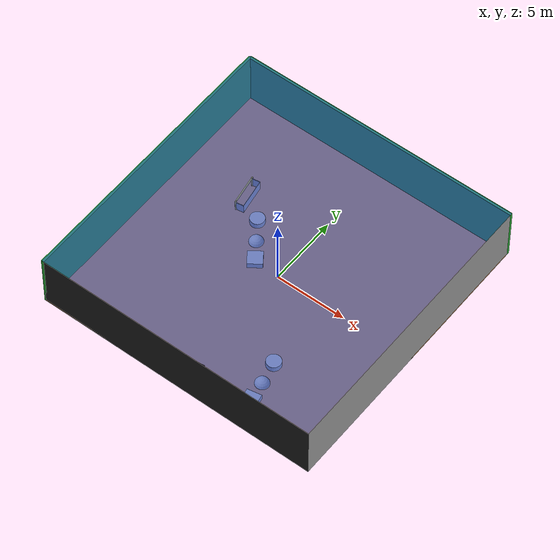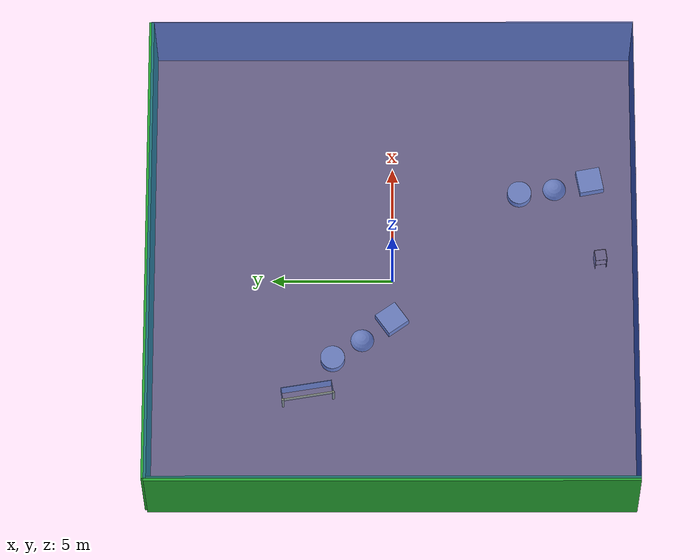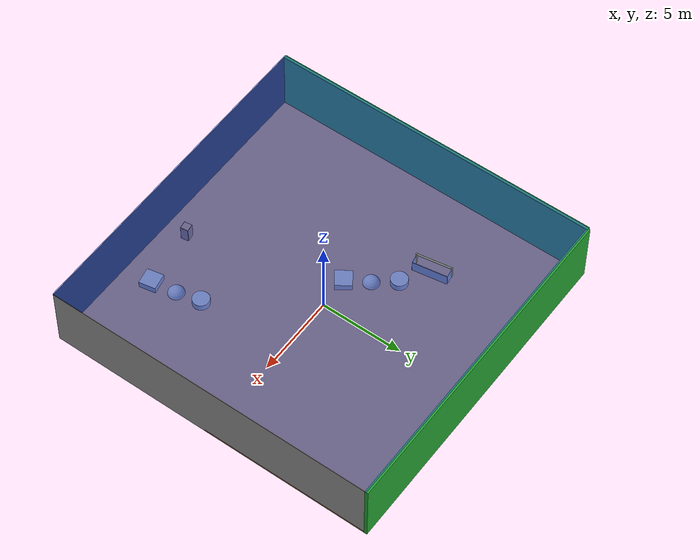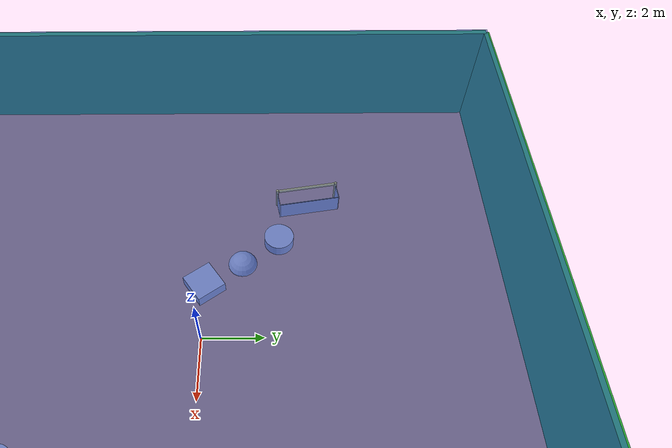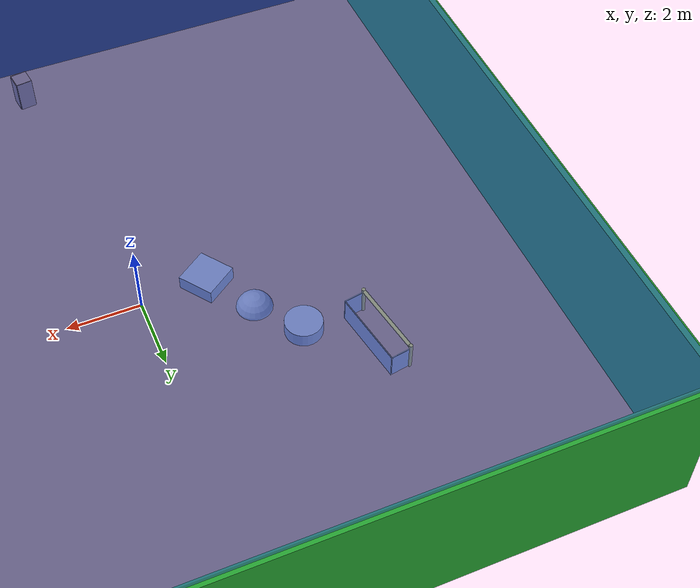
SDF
<sdf version="1.4">
 <world name="default">
  <physics type="ode">
   <max_step_size>0.001</max_step_size>
   <real_time_factor>1</real_time_factor>
   <real_time_update_rate>1000</real_time_update_rate>
   <gravity>0 0 -9.8</gravity>
  </physics>
  <scene><ambient>0.4 0.4 0.4 1</ambient><background>0.7 0.7 0.7 1</background><shadows>1</shadows></scene>
  <model name="Surrounding">
   <static>1</static>
   <link name="Ceiling">
    <collision name="Ceiling_Collision"><geometry><box><size>20 20 0.1</size></box></geometry></collision>
    <visual name="Ceiling_Visual">
     <geometry><box><size>20 20 0.1</size></box></geometry>
     <material>
      <script><uri>file://media/materials/scripts/gazebo.material</uri><name>Gazebo/BlueTransparent</name></script>
     </material>
    </visual>
    <pose>0 0 4.05 0 0 0</pose>
   </link>
   <link name="Wall_South">
    <collision name="Wall_South_Collision">
     <geometry><box><size>20 0 4</size></box></geometry>
     <pose>0 0 2 0 -0 0</pose>
    </collision>
    <visual name="Wall_South_Visual">
     <pose>0 0 2 0 -0 0</pose>
     <geometry><box><size>20 0 4</size></box></geometry>
     <material>
      <script><uri>file://media/materials/scripts/gazebo.material</uri><name>Gazebo/FlatBlack</name></script>
     </material>
    </visual>
    <velocity_decay><linear>0</linear><angular>0</angular></velocity_decay>
    <pose>0 -10 0 0 -0 0</pose>
   </link>
   <link name="Wall_East">
    <collision name="Wall_21_Collision">
     <geometry><box><size>20 0 4</size></box></geometry>
     <pose>0 0 2 0 -0 0</pose>
    </collision>
    <visual name="Wall_21_Visual">
     <pose>0 0 2 0 -0 0</pose>
     <geometry><box><size>20 0 4</size></box></geometry>
     <material>
      <script><uri>file://media/materials/scripts/gazebo.material</uri><name>Gazebo/Grey</name></script>
     </material>
    </visual>
    <velocity_decay><linear>0</linear><angular>0</angular></velocity_decay>
    <pose>10 0 0 0 -0 1.5708</pose>
   </link>
   <link name="Wall_North">
    <collision name="Wall_22_Collision">
     <geometry><box><size>20 0.2 4</size></box></geometry>
     <pose>0 0 2 0 -0 0</pose>
    </collision>
    <visual name="Wall_22_Visual">
     <pose>0 0 2 0 -0 0</pose>
     <geometry><box><size>20 0.2 4</size></box></geometry>
     <material>
      <script><uri>file://media/materials/scripts/gazebo.material</uri><name>Gazebo/GreenGlow</name></script>
     </material>
    </visual>
    <velocity_decay><linear>0</linear><angular>0</angular></velocity_decay>
    <pose>0 10 0 0 -0 0</pose>
   </link>
   <link name="Wall_West">
    <collision name="Wall_23_Collision">
     <geometry><box><size>20 0.2 4</size></box></geometry>
     <pose>0 0 2 0 -0 0</pose>
    </collision>
    <visual name="Wall_23_Visual">
     <pose>0 0 2 0 -0 0</pose>
     <geometry><box><size>20 0.2 4</size></box></geometry>
     <material>
      <script><uri>file://media/materials/scripts/gazebo.material</uri><name>Gazebo/Green</name></script>
     </material>
    </visual>
    <velocity_decay><linear>0</linear><angular>0</angular></velocity_decay>
    <pose>-10 0 0 0 0 -1.5708</pose>
   </link>
   <link name="Ground_link">
    <collision name="collision">
     <pose>0 0 .05 0 -0 0</pose>
     <geometry><box><size>20 20 0.1</size></box></geometry>
    </collision>
    <visual name="visual">
     <pose>0 0 .05 0 -0 0</pose>
     <geometry><box><size>20 20 0.1</size></box></geometry>
     <material>
      <script><uri>file://media/materials/scripts/gazebo.material</uri><name>Gazebo/WoodFloor</name></script>
     </material>
    </visual>
   </link>
   <static>1</static>
  </model>
  <spherical_coordinates>
   <surface_model>EARTH_WGS84</surface_model>
   <latitude_deg>0</latitude_deg>
   <longitude_deg>0</longitude_deg>
   <elevation>0</elevation>
   <heading_deg>0</heading_deg>
  </spherical_coordinates>
  <light name="lightball_0" type="diffuse">
   <diffuse>0.8 0.8 0.8 1</diffuse>
   <specular>0.2 0.2 0.2 1</specular>
   <attenuation>
    <range>100</range>
    <constant>0.7</constant>
    <linear>0.01</linear>
    <quadratic>0.001</quadratic>
   </attenuation>
   <direction>-0.5 0.1 -0.9</direction>
   <pose>-1.09374626554 3.08859727614 1.27752619091 0 0 0</pose>
  </light>
  <light name="lightball_1" type="diffuse">
   <diffuse>0.8 0.8 0.8 1</diffuse>
   <specular>0.2 0.2 0.2 1</specular>
   <attenuation>
    <range>100</range>
    <constant>0.7</constant>
    <linear>0.01</linear>
    <quadratic>0.001</quadratic>
   </attenuation>
   <direction>-0.5 0.1 -0.9</direction>
   <pose>9.62038259148 -3.77822988487 3.84738308547 0 0 0</pose>
  </light>
  <light name="lightball_2" type="diffuse">
   <diffuse>0.8 0.8 0.8 1</diffuse>
   <specular>0.2 0.2 0.2 1</specular>
   <attenuation>
    <range>100</range>
    <constant>0.7</constant>
    <linear>0.01</linear>
    <quadratic>0.001</quadratic>
   </attenuation>
   <direction>-0.5 0.1 -0.9</direction>
   <pose>0.206652769134 7.06577893354 1.04433629381 0 0 0</pose>
  </light>
  <light name="lightball_3" type="diffuse">
   <diffuse>0.8 0.8 0.8 1</diffuse>
   <specular>0.2 0.2 0.2 1</specular>
   <attenuation>
    <range>100</range>
    <constant>0.7</constant>
    <linear>0.01</linear>
    <quadratic>0.001</quadratic>
   </attenuation>
   <direction>-0.5 0.1 -0.9</direction>
   <pose>4.44578008203 8.76084788159 3.82541833217 0 0 0</pose>
  </light>
  <light name="lightball_4" type="diffuse">
   <diffuse>0.8 0.8 0.8 1</diffuse>
   <specular>0.2 0.2 0.2 1</specular>
   <attenuation>
    <range>100</range>
    <constant>0.7</constant>
    <linear>0.01</linear>
    <quadratic>0.001</quadratic>
   </attenuation>
   <direction>-0.5 0.1 -0.9</direction>
   <pose>0.764609099758 1.31302880565 0.626818821511 0 0 0</pose>
  </light>
  <light name="lightball_5" type="diffuse">
   <diffuse>0.8 0.8 0.8 1</diffuse>
   <specular>0.2 0.2 0.2 1</specular>
   <attenuation>
    <range>100</range>
    <constant>0.7</constant>
    <linear>0.01</linear>
    <quadratic>0.001</quadratic>
   </attenuation>
   <direction>-0.5 0.1 -0.9</direction>
   <pose>-1.33880534635 8.08069166556 2.83337288137 0 0 0</pose>
  </light>
  <light name="lightball_6" type="diffuse">
   <diffuse>0.8 0.8 0.8 1</diffuse>
   <specular>0.2 0.2 0.2 1</specular>
   <attenuation>
    <range>100</range>
    <constant>0.7</constant>
    <linear>0.01</linear>
    <quadratic>0.001</quadratic>
   </attenuation>
   <direction>-0.5 0.1 -0.9</direction>
   <pose>5.87762246332 2.77242192002 0.506099312477 0 0 0</pose>
  </light>
  <light name="lightball_7" type="diffuse">
   <diffuse>0.8 0.8 0.8 1</diffuse>
   <specular>0.2 0.2 0.2 1</specular>
   <attenuation>
    <range>100</range>
    <constant>0.7</constant>
    <linear>0.01</linear>
    <quadratic>0.001</quadratic>
   </attenuation>
   <direction>-0.5 0.1 -0.9</direction>
   <pose>-0.768736009772 1.69691276474 2.8583168311 0 0 0</pose>
  </light>
  <light name="lightball_8" type="diffuse">
   <diffuse>0.8 0.8 0.8 1</diffuse>
   <specular>0.2 0.2 0.2 1</specular>
   <attenuation>
    <range>100</range>
    <constant>0.7</constant>
    <linear>0.01</linear>
    <quadratic>0.001</quadratic>
   </attenuation>
   <direction>-0.5 0.1 -0.9</direction>
   <pose>-4.54541034618 -5.47183931819 1.56989867919 0 0 0</pose>
  </light>
  <light name="lightball_9" type="diffuse">
   <diffuse>0.8 0.8 0.8 1</diffuse>
   <specular>0.2 0.2 0.2 1</specular>
   <attenuation>
    <range>100</range>
    <constant>0.7</constant>
    <linear>0.01</linear>
    <quadratic>0.001</quadratic>
   </attenuation>
   <direction>-0.5 0.1 -0.9</direction>
   <pose>-1.57869365588 -4.56474416581 3.32967256866 0 0 0</pose>
  </light>
  <light name="lightball_10" type="diffuse">
   <diffuse>0.8 0.8 0.8 1</diffuse>
   <specular>0.2 0.2 0.2 1</specular>
   <attenuation>
    <range>100</range>
    <constant>0.7</constant>
    <linear>0.01</linear>
    <quadratic>0.001</quadratic>
   </attenuation>
   <direction>-0.5 0.1 -0.9</direction>
   <pose>-4.18570717898 -5.15424928302 2.04866696525 0 0 0</pose>
  </light>
  <light name="lightball_11" type="diffuse">
   <diffuse>0.8 0.8 0.8 1</diffuse>
   <specular>0.2 0.2 0.2 1</specular>
   <attenuation>
    <range>100</range>
    <constant>0.7</constant>
    <linear>0.01</linear>
    <quadratic>0.001</quadratic>
   </attenuation>
   <direction>-0.5 0.1 -0.9</direction>
   <pose>2.6660605798 -6.57060325222 1.31204196469 0 0 0</pose>
  </light>
  <light name="lightball_12" type="diffuse">
   <diffuse>0.8 0.8 0.8 1</diffuse>
   <specular>0.2 0.2 0.2 1</specular>
   <attenuation>
    <range>100</range>
    <constant>0.7</constant>
    <linear>0.01</linear>
    <quadratic>0.001</quadratic>
   </attenuation>
   <direction>-0.5 0.1 -0.9</direction>
   <pose>4.27317168134 5.52023854186 0.528713149391 0 0 0</pose>
  </light>
  <light name="lightball_13" type="diffuse">
   <diffuse>0.8 0.8 0.8 1</diffuse>
   <specular>0.2 0.2 0.2 1</specular>
   <attenuation>
    <range>100</range>
    <constant>0.7</constant>
    <linear>0.01</linear>
    <quadratic>0.001</quadratic>
   </attenuation>
   <direction>-0.5 0.1 -0.9</direction>
   <pose>-0.275345342014 -3.67085902697 3.524153431 0 0 0</pose>
  </light>
  <include>
   <uri>model://robocup_3Dsim_goal</uri>
   <pose>-5.36508144932 3.45750121204 0 0 0 0.162408995458</pose>
  </include>
  <include>
   <uri>model://textured_shapes</uri>
   <pose>-2.66343157582 1.24285585559 0 0 0 0.616995498244</pose>
  </include>
  <include><uri>model://cabinet</uri><pose>0.791100293683 -8.64291093232 0 0 0 0.132575476604</pose></include>
  <include>
   <uri>model://textured_shapes</uri>
   <pose>4.08310460835 -6.78118597875 0 0 0 0.188362112534</pose>
  </include>
 </world>
</sdf>

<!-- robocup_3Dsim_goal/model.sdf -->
<sdf version="1.5">
  <model name="robocup_3d_goal">
    <static>true</static>
    <link name="left_post">
      <pose>0 1.05 0.45 0 0 0</pose>
      <collision name="collision">
        <geometry>
          <cylinder>
            <radius>0.05</radius>
            <length>0.9</length>
          </cylinder>
        </geometry>
      </collision>
      <visual name="visual">
        <geometry>
          <cylinder>
            <radius>0.05</radius>
            <length>0.9</length>
          </cylinder>
        </geometry>
        <material>
          <script>
            <uri>file://media/materials/scripts/gazebo.material</uri>
            <name>Gazebo/ZincYellow</name>
          </script>
        </material>
      </visual>
    </link>
    <link name="left_support_horiz_lower">
      <pose>0.30 1.05 0.01 0 0 0</pose>
      <collision name="collision">
        <geometry>
          <box>
            <size>0.50 0.02 0.02</size>
          </box>
        </geometry>
      </collision>
      <visual name="visual">
        <geometry>
          <box>
            <size>0.50 0.02 0.02</size>
          </box>
        </geometry>
        <material>
          <script>
            <uri>file://media/materials/scripts/gazebo.material</uri>
            <name>Gazebo/White</name>
          </script>
        </material>
      </visual>
    </link>
    <link name="left_support_horiz_upper">
      <pose>0.30 1.05 0.79 0 0 0</pose>
      <collision name="collision">
        <geometry>
          <box>
            <size>0.50 0.02 0.02</size>
          </box>
        </geometry>
      </collision>
      <visual name="visual">
        <geometry>
          <box>
            <size>0.50 0.02 0.02</size>
          </box>
        </geometry>
        <material>
          <script>
            <uri>file://media/materials/scripts/gazebo.material</uri>
            <name>Gazebo/White</name>
          </script>
        </material>
      </visual>
    </link>
    <link name="left_support_vertical">
      <pose>0.56 1.05 0.4 0 1.5708 0</pose>
      <collision name="collision">
        <geometry>
          <box>
            <size>0.80 0.02 0.02</size>
          </box>
        </geometry>
      </collision>
      <visual name="visual">
        <geometry>
          <box>
            <size>0.80 0.02 0.02</size>
          </box>
        </geometry>
        <material>
          <script>
            <uri>file://media/materials/scripts/gazebo.material</uri>
            <name>Gazebo/White</name>
          </script>
        </material>
      </visual>
    </link>
    <link name="right_support_horiz_lower">
      <pose>0.30 -1.05 0.01 0 0 0</pose>
      <collision name="collision">
        <geometry>
          <box>
            <size>0.50 0.02 0.02</size>
          </box>
        </geometry>
      </collision>
      <visual name="visual">
        <geometry>
          <box>
            <size>0.50 0.02 0.02</size>
          </box>
        </geometry>
        <material>
          <script>
            <uri>file://media/materials/scripts/gazebo.material</uri>
            <name>Gazebo/White</name>
          </script>
        </material>
      </visual>
    </link>
    <link name="right_support_horiz_upper">
      <pose>0.30 -1.05 0.79 0 0 0</pose>
      <collision name="collision">
        <geometry>
          <box>
            <size>0.50 0.02 0.02</size>
          </box>
        </geometry>
      </collision>
      <visual name="visual">
        <geometry>
          <box>
            <size>0.50 0.02 0.02</size>
          </box>
        </geometry>
        <material>
          <script>
            <uri>file://media/materials/scripts/gazebo.material</uri>
            <name>Gazebo/White</name>
          </script>
        </material>
      </visual>
    </link>
    <link name="right_support_vertical">
      <pose>0.56 -1.05 0.4 0 1.5708 0</pose>
      <collision name="collision">
        <geometry>
          <box>
            <size>0.80 0.02 0.02</size>
          </box>
        </geometry>
      </collision>
      <visual name="visual">
        <geometry>
          <box>
            <size>0.80 0.02 0.02</size>
          </box>
        </geometry>
        <material>
          <script>
            <uri>file://media/materials/scripts/gazebo.material</uri>
            <name>Gazebo/White</name>
          </script>
        </material>
      </visual>
    </link>
    <link name="center_support_horiz_lower">
      <pose>0.56 0 0.01 0 1.5708 0</pose>
      <collision name="collision">
        <geometry>
          <box>
            <size>0.02 2.08 0.02</size>
          </box>
        </geometry>
      </collision>
      <visual name="visual">
        <geometry>
          <box>
            <size>0.02 2.08 0.02</size>
          </box>
        </geometry>
        <material>
          <script>
            <uri>file://media/materials/scripts/gazebo.material</uri>
            <name>Gazebo/White</name>
          </script>
        </material>
      </visual>
    </link>
    <link name="center_support_horiz_upper">
      <pose>0.56 0 0.79 0 1.5708 0</pose>
      <collision name="collision">
        <geometry>
          <box>
            <size>0.02 2.08 0.02</size>
          </box>
        </geometry>
      </collision>
      <visual name="visual">
        <geometry>
          <box>
            <size>0.02 2.08 0.02</size>
          </box>
        </geometry>
        <material>
          <script>
            <uri>file://media/materials/scripts/gazebo.material</uri>
            <name>Gazebo/White</name>
          </script>
        </material>
      </visual>
    </link>
    <link name="right_post">
      <pose>0 -1.05 0.45 0 0 0</pose>
      <collision name="collision">
        <geometry>
          <cylinder>
            <radius>0.05</radius>
            <length>0.9</length>
          </cylinder>
        </geometry>
      </collision>
      <visual name="visual">
        <geometry>
          <cylinder>
            <radius>0.05</radius>
            <length>0.9</length>
          </cylinder>
        </geometry>
        <material>
          <script>
            <uri>file://media/materials/scripts/gazebo.material</uri>
            <name>Gazebo/ZincYellow</name>
          </script>
        </material>
      </visual>
    </link>
    <link name="crossbar">
      <pose>0 0 0.85 1.57 1.57 0</pose>
      <collision name="collision">
        <geometry>
          <cylinder>
            <radius>0.05</radius>
            <length>2.0</length>
          </cylinder>
        </geometry>
      </collision>
      <visual name="visual">
        <geometry>
          <cylinder>
            <radius>0.05</radius>
            <length>2.0</length>
          </cylinder>
        </geometry>
        <material>
          <script>
            <uri>file://media/materials/scripts/gazebo.material</uri>
            <name>Gazebo/ZincYellow</name>
          </script>
        </material>
      </visual>
    </link>
    <link name="center_net">
      <pose>0.56 0 0.40 0 0 0</pose>
      <collision name="collision">
        <geometry>
          <box>
            <size>0.01 2.1 0.80</size>
          </box>
        </geometry>
      </collision>
      <visual name="visual">
        <geometry>
          <box>
            <size>0.01 2.1 0.80</size>
          </box>
        </geometry>
        <material>
          <script>
            <uri>model://../model_source/models/robocup09_spl_field/materials/scripts/</uri>
            <uri>model://../model_source/models/robocup09_spl_field/materials/textures/</uri>
            <name>RoboCup/Net</name>
          </script>
        </material>
      </visual>
    </link>
    <link name="left_net">
      <pose>0.30 1.05 0.40 0 0 0</pose>
      <collision name="collision">
        <geometry>
          <box>
            <size>0.50 0.01 0.76</size>
          </box>
        </geometry>
      </collision>
      <visual name="visual">
        <geometry>
          <box>
            <size>0.50 0.01 0.76</size>
          </box>
        </geometry>
        <material>
          <script>
            <uri>model://../model_source/models/robocup09_spl_field/materials/scripts/</uri>
            <uri>model://../model_source/models/robocup09_spl_field/materials/textures/</uri>
            <name>RoboCup/Net</name>
          </script>
        </material>
      </visual>
    </link>
    <link name="right_net">
      <pose>0.30 -1.05 0.40 0 0 0</pose>
      <collision name="collision">
        <geometry>
          <box>
            <size>0.50 0.01 0.76</size>
          </box>
        </geometry>
      </collision>
      <visual name="visual">
        <geometry>
          <box>
            <size>0.50 0.01 0.76</size>
          </box>
        </geometry>
        <material>
          <script>
            <uri>model://../model_source/models/robocup09_spl_field/materials/scripts/</uri>
            <uri>model://../model_source/models/robocup09_spl_field/materials/textures/</uri>
            <name>RoboCup/Net</name>
          </script>
        </material>
      </visual>
    </link>
  </model>
</sdf>

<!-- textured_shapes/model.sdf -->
<sdf version="1.6">
  <model name="textured_shapes">
    <pose>0 0 0.5 0 0 0</pose>
    <link name="box">
      <pose>0 -1.5 0 0 0 0</pose>
      <collision name="collision">
        <geometry>
          <box>
            <size>1 1 1</size>
          </box>
        </geometry>
      </collision>
      <visual name="visual">
        <geometry>
          <box>
            <size>1 1 1</size>
          </box>
        </geometry>
        <material>
          <script>
            <uri>model://../model_source/models/textured_shapes/materials/scripts</uri>
            <uri>model://../model_source/models/textured_shapes/materials/textures</uri>
            <name>TexturedShape/Squares</name>
          </script>
        </material>
      </visual>
    </link>
    <link name="sphere">
      <collision name="collision">
        <geometry>
          <sphere>
            <radius>0.5</radius>
          </sphere>
        </geometry>
      </collision>
      <visual name="visual">
        <geometry>
          <sphere>
            <radius>0.5</radius>
          </sphere>
        </geometry>
        <material>
          <script>
            <uri>model://../model_source/models/textured_shapes/materials/scripts</uri>
            <uri>model://../model_source/models/textured_shapes/materials/textures</uri>
            <name>TexturedShape/Squares</name>
          </script>
        </material>
      </visual>
    </link>
    <link name="cylinder">
      <pose>0 1.5 0 0 0 0</pose>
      <collision name="collision">
        <geometry>
          <cylinder>
            <radius>0.5</radius>
            <length>1</length>
          </cylinder>
        </geometry>
      </collision>
      <visual name="visual">
        <geometry>
          <cylinder>
            <radius>0.5</radius>
            <length>1</length>
          </cylinder>
        </geometry>
        <material>
          <script>
            <uri>model://../model_source/models/textured_shapes/materials/scripts</uri>
            <uri>model://../model_source/models/textured_shapes/materials/textures</uri>
            <name>TexturedShape/Squares</name>
          </script>
        </material>
      </visual>
    </link>
  </model>
</sdf>

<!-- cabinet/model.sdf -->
<sdf version="1.5">
  <model name="cabinet">
    <static>true</static>
    <link name="cabinet_bottom_plate">
      <inertial>
        <pose>0 0 -1 0 0 0</pose>
        <inertia>
          <ixx>2.050000</ixx>
          <ixy>0</ixy>
          <ixz>0</ixz>
          <iyy>2.050000</iyy>
          <iyz>0</iyz>
          <izz>2.050000</izz>
        </inertia>
        <mass>25.000000</mass>
      </inertial>
      <collision name="cabinet_bottom_plate_geom">
        <pose>0 0 0.010000 0 0 0</pose>
        <geometry>
          <box>
            <size>0.450000 0.450000 0.020000</size>
          </box>
        </geometry>
      </collision>
      <visual name="cabinet_bottom_plate_geom_visual">
        <pose>0 0 0.010000 0 0 0</pose>
        <geometry>
          <box>
            <size>0.450000 0.450000 0.020000</size>
          </box>
        </geometry>
        <material>
          <script>
            <uri>model://media/materials/scripts/gazebo.material</uri>
            <name>Gazebo/Wood</name>
          </script>
        </material>
      </visual>
      <collision name="cabinet_bottom_plate_geom_cabinet_back_plate">
        <pose>0.235000 0 0.510000 0 0 0</pose>
        <geometry>
          <box>
            <size>0.020000 0.450000 1.020000</size>
          </box>
        </geometry>
      </collision>
      <visual name="cabinet_bottom_plate_geom_cabinet_back_plate_visual">
        <pose>0.235000 0 0.510000 0 0 0</pose>
        <geometry>
          <box>
            <size>0.020000 0.450000 1.020000</size>
          </box>
        </geometry>
        <material>
          <script>
            <uri>model://media/materials/scripts/gazebo.material</uri>
            <name>Gazebo/Wood</name>
          </script>
        </material>
      </visual>
      <collision name="cabinet_bottom_plate_geom_cabinet_left_plate">
        <pose>0 0.235000 0.510000 0 0 0</pose>
        <geometry>
          <box>
            <size>0.450000 0.020000 1.020000</size>
          </box>
        </geometry>
      </collision>
      <visual name="cabinet_bottom_plate_geom_cabinet_left_plate_visual">
        <pose>0 0.235000 0.510000 0 0 0</pose>
        <geometry>
          <box>
            <size>0.450000 0.020000 1.020000</size>
          </box>
        </geometry>
        <material>
          <script>
            <uri>model://media/materials/scripts/gazebo.material</uri>
            <name>Gazebo/Wood</name>
          </script>
        </material>
      </visual>
      <collision name="cabinet_bottom_plate_geom_cabinet_middle_plate">
        <pose>0 0 0.510000 0 0 0</pose>
        <geometry>
          <box>
            <size>0.450000 0.450000 0.020000</size>
          </box>
        </geometry>
      </collision>
      <visual name="cabinet_bottom_plate_geom_cabinet_middle_plate_visual">
        <pose>0 0 0.510000 0 0 0</pose>
        <geometry>
          <box>
            <size>0.450000 0.450000 0.020000</size>
          </box>
        </geometry>
        <material>
          <script>
            <uri>model://media/materials/scripts/gazebo.material</uri>
            <name>Gazebo/Wood</name>
          </script>
        </material>
      </visual>
      <collision name="cabinet_bottom_plate_geom_cabinet_right_plate">
        <pose>0 -0.235000 0.510000 0 0 0</pose>
        <geometry>
          <box>
            <size>0.450000 0.020000 1.020000</size>
          </box>
        </geometry>
      </collision>
      <visual name="cabinet_bottom_plate_geom_cabinet_right_plate_visual">
        <pose>0 -0.235000 0.510000 0 0 0</pose>
        <geometry>
          <box>
            <size>0.450000 0.020000 1.020000</size>
          </box>
        </geometry>
        <material>
          <script>
            <uri>model://media/materials/scripts/gazebo.material</uri>
            <name>Gazebo/Wood</name>
          </script>
        </material>
      </visual>
      <collision name="cabinet_bottom_plate_geom_cabinet_top_plate">
        <pose>0 0 1.010000 0 0 0</pose>
        <geometry>
          <box>
            <size>0.450000 0.450000 0.020000</size>
          </box>
        </geometry>
      </collision>
      <visual name="cabinet_bottom_plate_geom_cabinet_top_plate_visual">
        <pose>0 0 1.010000 0 0 0</pose>
        <geometry>
          <box>
            <size>0.450000 0.450000 0.020000</size>
          </box>
        </geometry>
        <material>
          <script>
            <uri>model://media/materials/scripts/gazebo.material</uri>
            <name>Gazebo/Wood</name>
          </script>
        </material>
      </visual>
    </link>
  </model>
</sdf>
